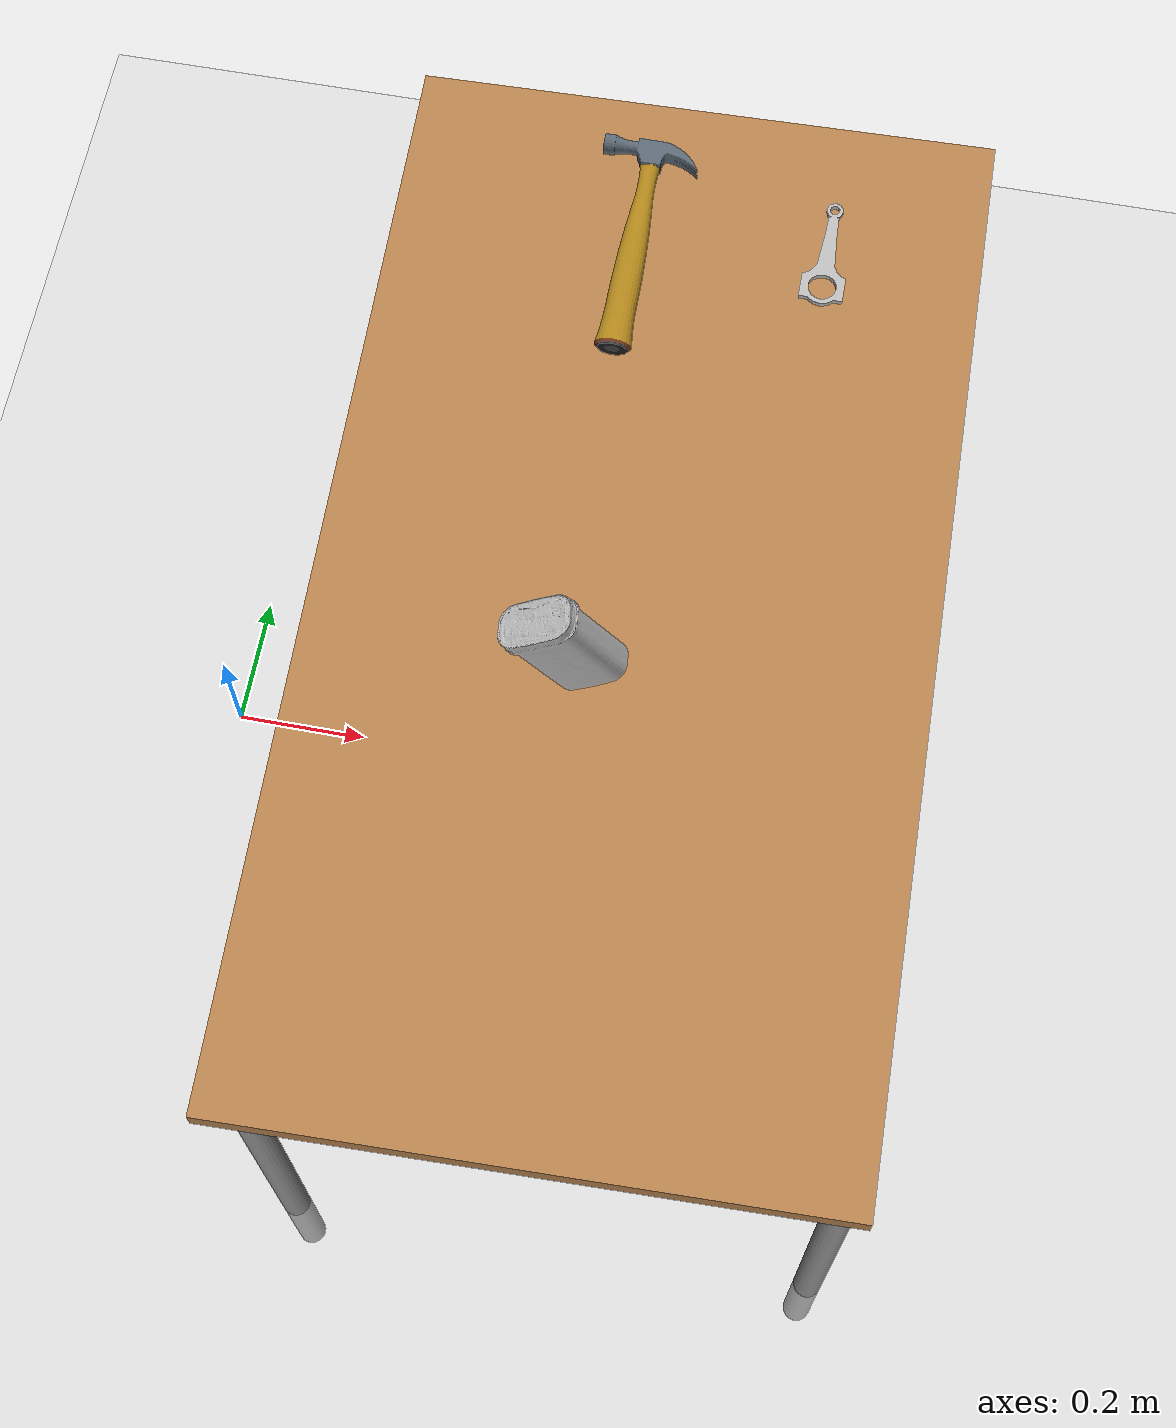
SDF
<sdf version="1.7">
 <world name="default">
  <light name="sun" type="directional">
   <pose>0 0 10 0 -0 0</pose>
   <diffuse>0.8 0.8 0.8 1</diffuse>
   <specular>0.2 0.2 0.2 1</specular>
   <attenuation>
    <range>1000</range>
    <constant>0.9</constant>
    <linear>0.01</linear>
    <quadratic>0.001</quadratic>
   </attenuation>
   <direction>-0.5 0.1 -0.9</direction>
   <spot><inner_angle>0</inner_angle><outer_angle>0</outer_angle><falloff>0</falloff></spot>
  </light>
  <model name="ground_plane">
   <static>1</static>
   <link name="link">
    <collision name="collision">
     <geometry><plane><normal>0 0 1</normal><size>100 100</size></plane></geometry>
     <surface><friction><ode><mu>100</mu><mu2>50</mu2></ode></friction></surface>
    </collision>
    <visual name="visual">
     <cast_shadows>0</cast_shadows>
     <geometry><plane><normal>0 0 1</normal><size>100 100</size></plane></geometry>
     <material>
      <script><uri>file://media/materials/scripts/gazebo.material</uri><name>Gazebo/Grey</name></script>
     </material>
    </visual>
   </link>
  </model>
  <gravity>0 0 -9.8</gravity>
  <magnetic_field>6e-06 2.3e-05 -4.2e-05</magnetic_field>
  <atmosphere type="adiabatic"/>
  <physics type="ode">
   <max_step_size>0.001</max_step_size>
   <real_time_factor>1</real_time_factor>
   <real_time_update_rate>1000</real_time_update_rate>
  </physics>
  <scene><ambient>0.4 0.4 0.4 1</ambient><background>0.7 0.7 0.7 1</background><shadows>1</shadows></scene>
  <audio><device>default</device></audio>
  <spherical_coordinates>
   <surface_model>EARTH_WGS84</surface_model>
   <latitude_deg>0</latitude_deg>
   <longitude_deg>0</longitude_deg>
   <elevation>0</elevation>
   <heading_deg>0</heading_deg>
  </spherical_coordinates>
  <model name="table">
   <static>1</static>
   <link name="link">
    <collision name="surface">
     <pose>0 0 1 0 -0 0</pose>
     <geometry><box><size>1.5 0.8 0.03</size></box></geometry>
     <surface><friction><ode><mu>0.6</mu><mu2>0.6</mu2></ode></friction></surface>
    </collision>
    <visual name="visual1">
     <pose>0 0 1 0 -0 0</pose>
     <geometry><box><size>1.5 0.8 0.03</size></box></geometry>
     <material>
      <script><uri>file://media/materials/scripts/gazebo.material</uri><name>Gazebo/Wood</name></script>
     </material>
    </visual>
    <collision name="front_left_leg">
     <pose>0.68 0.38 0.5 0 -0 0</pose>
     <geometry><cylinder><radius>0.02</radius><length>1</length></cylinder></geometry>
    </collision>
    <visual name="front_left_leg">
     <pose>0.68 0.38 0.5 0 -0 0</pose>
     <geometry><cylinder><radius>0.02</radius><length>1</length></cylinder></geometry>
     <material>
      <script><uri>file://media/materials/scripts/gazebo.material</uri><name>Gazebo/Grey</name></script>
     </material>
    </visual>
    <collision name="front_right_leg">
     <pose>0.68 -0.38 0.5 0 -0 0</pose>
     <geometry><cylinder><radius>0.02</radius><length>1</length></cylinder></geometry>
    </collision>
    <visual name="front_right_leg">
     <pose>0.68 -0.38 0.5 0 -0 0</pose>
     <geometry><cylinder><radius>0.02</radius><length>1</length></cylinder></geometry>
     <material>
      <script><uri>file://media/materials/scripts/gazebo.material</uri><name>Gazebo/Grey</name></script>
     </material>
    </visual>
    <collision name="back_right_leg">
     <pose>-0.68 -0.38 0.5 0 -0 0</pose>
     <geometry><cylinder><radius>0.02</radius><length>1</length></cylinder></geometry>
    </collision>
    <visual name="back_right_leg">
     <pose>-0.68 -0.38 0.5 0 -0 0</pose>
     <geometry><cylinder><radius>0.02</radius><length>1</length></cylinder></geometry>
     <material>
      <script><uri>file://media/materials/scripts/gazebo.material</uri><name>Gazebo/Grey</name></script>
     </material>
    </visual>
    <collision name="back_left_leg">
     <pose>-0.68 0.38 0.5 0 -0 0</pose>
     <geometry><cylinder><radius>0.02</radius><length>1</length></cylinder></geometry>
    </collision>
    <visual name="back_left_leg">
     <pose>-0.68 0.38 0.5 0 -0 0</pose>
     <geometry><cylinder><radius>0.02</radius><length>1</length></cylinder></geometry>
     <material>
      <script><uri>file://media/materials/scripts/gazebo.material</uri><name>Gazebo/Grey</name></script>
     </material>
    </visual>
   </link>
   <pose>0.628743 -0.054706 -0.216115 0 0 -1.54736</pose>
  </model>
  <plugin name="gazebo_link_attacher" filename="libgazebo_link_attacher.so"/>
  <plugin name="gazebo_ros_init" filename="libgazebo_ros_init.so"/>
  <plugin name="gazebo_ros_factory" filename="libgazebo_ros_factory.so"/>
  <model name="hammer">
   <static>1</static>
   <link name="link">
    <collision name="collision">
     <geometry><mesh><uri>model://hammer/meshes/hammer.dae</uri></mesh></geometry>
    </collision>
    <visual name="visual"><geometry><mesh><uri>model://hammer/meshes/hammer.dae</uri></mesh></geometry></visual>
   </link>
   <pose>0.539928 0.51658 0.821623 0 -0 0</pose>
  </model>
  <model name="Sorry_Sliders_Board_Game">
   <link name="link_0">
    <visual name="visual">
     <geometry>
      <mesh>
       <uri>/home/group11/.ignition/fuel/fuel.ignitionrobotics.org/googleresearch/models/sorry_sliders_board_game/1/meshes/model.obj</uri>
      </mesh>
     </geometry>
    </visual>
    <collision name="collision_0">
     <geometry>
      <mesh>
       <uri>/home/group11/.ignition/fuel/fuel.ignitionrobotics.org/googleresearch/models/sorry_sliders_board_game/1/meshes/model.obj</uri>
      </mesh>
     </geometry>
    </collision>
    <inertial>
     <inertia><ixx>1</ixx><ixy>0</ixy><ixz>0</ixz><iyy>1</iyy><iyz>0</iyz><izz>1</izz></inertia>
     <mass>1</mass>
    </inertial>
   </link>
   <pose>0.609558 -0.17286 0.812887 0.52498 -0.013819 -1.4255</pose>
  </model>
  <model name="piston_rod_part">
   <link name="link">
    <inertial>
     <pose>0 0.05415 0.00355 0 -0 0</pose>
     <mass>0.5</mass>
     <inertia>
      <ixx>0.00109584</ixx>
      <ixy>0</ixy>
      <ixz>0</ixz>
      <iyy>4.23854e-05</iyy>
      <iyz>0</iyz>
      <izz>0.00113354</izz>
     </inertia>
    </inertial>
    <collision name="collision_1">
     <pose>0 0 0.00375 0 -0 0</pose>
     <geometry><box><size>0.059 0.052 0.0075</size></box></geometry>
     <surface><contact><ode><max_vel>0.1</max_vel><min_depth>0.001</min_depth></ode></contact></surface>
    </collision>
    <collision name="collision_2">
     <pose>0 0.08 0.00375 0 -0 0</pose>
     <geometry><box><size>0.031 0.11 0.0075</size></box></geometry>
     <surface><contact><ode><max_vel>0.1</max_vel><min_depth>0.001</min_depth></ode></contact></surface>
    </collision>
    <visual name="visual">
     <geometry>
      <mesh><uri>model://piston_rod_part/meshes/piston_rod.dae</uri><scale>0.25 0.25 0.25</scale></mesh>
     </geometry>
     <material>
      <script>
       <uri>model://arm_part/materials/scripts</uri>
       <uri>model://arm_part/materials/textures</uri>
       <name>ArmPart/Diffuse</name>
      </script>
     </material>
    </visual>
   </link>
   <pose>0.80805 0.435421 0.798492 0 -0 0</pose>
  </model>
 </world>
</sdf>
